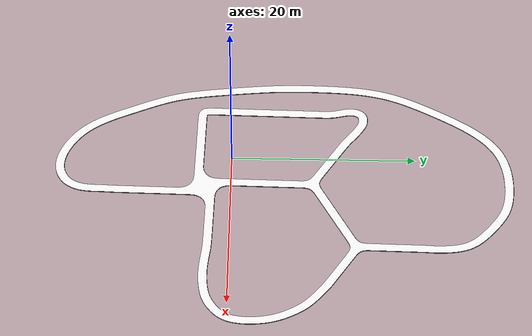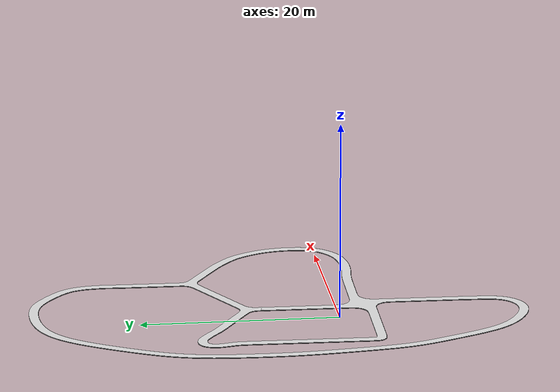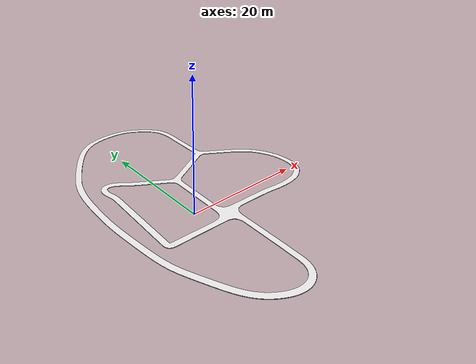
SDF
<?xml version="1.0" ?>
<sdf version="1.6">
  <model name='Raceway_1'>
    <pose>0 0 0 0 0 1.55</pose>
    <self_collide>false</self_collide>
    <static>true</static>
    <link name='Raceway_1/Base'>
      <collision name="collision">
        <pose>0 0 0 0 0 0</pose>
        <geometry>
            <plane>
                <normal>0 0 1</normal>
                <size>100 100</size>
            </plane>
        </geometry>
      </collision>
      <visual name='Raceway_1/TrackVisual'>
        <pose>4 -8 -0.037 0 0 0</pose>
        <geometry>
          <mesh>
            <scale>0.75 0.75 0.75</scale>
            <uri>model://Raceway_1/meshes/track.dae</uri>
          </mesh>
        </geometry>
      </visual>
    </link>
  </model>
</sdf>
